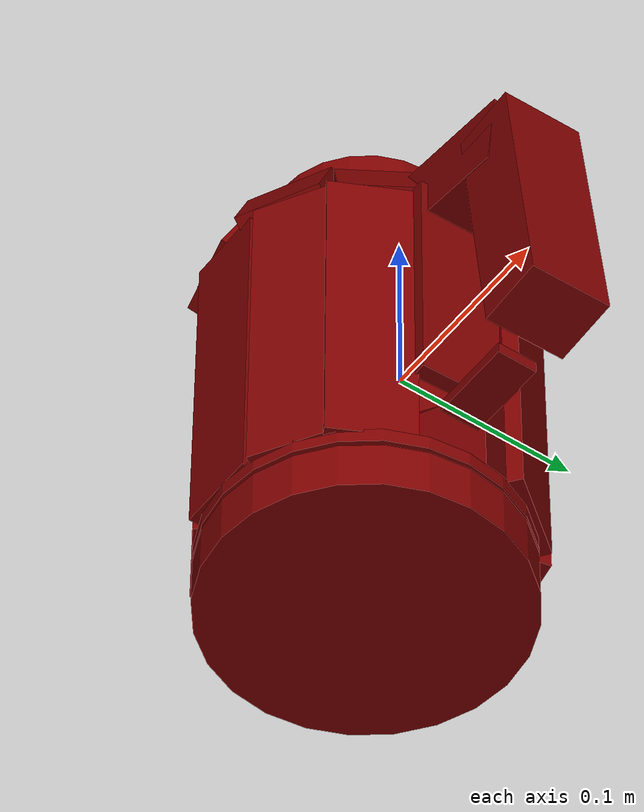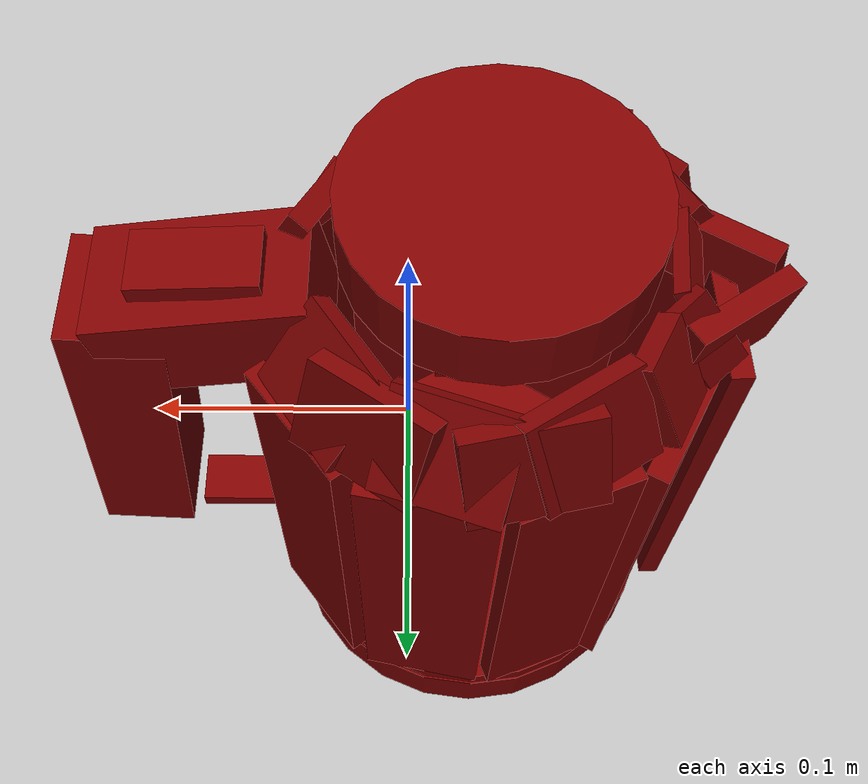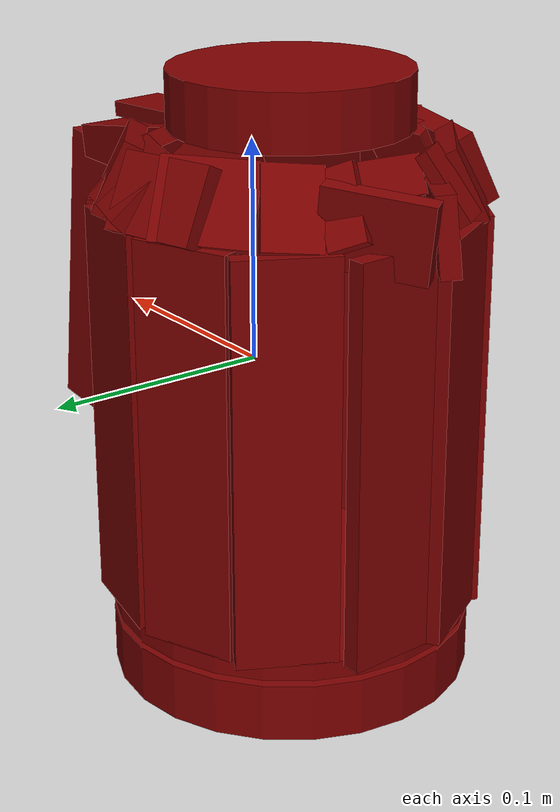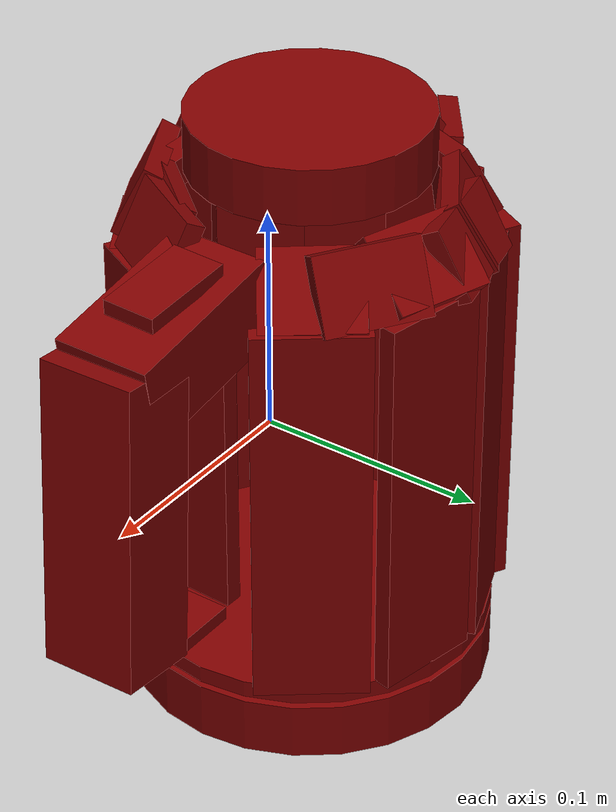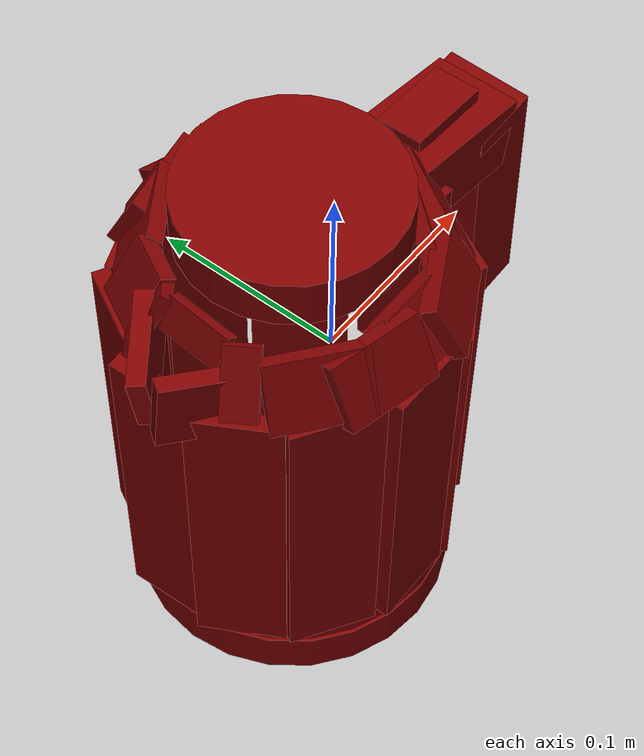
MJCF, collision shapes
<?xml version='1.0' encoding='UTF-8'?>
<mujoco model="model">
  <compiler angle="radian"/>
  <asset>
    <mesh file="visuals/Body001.obj" name="Body001_vis"/>
    <mesh file="visuals/Button001.obj" name="Button001_vis"/>
    <mesh file="visuals/Handle001.obj" name="Handle001_vis"/>
    <mesh file="visuals/Lever001.obj" name="Lever001_vis"/>
    <mesh file="visuals/Lid001.obj" name="Lid001_vis"/>
    <texture file="visuals/T_BC001.png" name="Body001_material" type="2d"/>
    <material name="Body001_material" rgba="1 1 1 1.0" texture="Body001_material" shininess="0.5" specular="0.3103448502657381"/>
    <texture file="visuals/T_BC001.png" name="Handle001_material" type="2d"/>
    <material name="Handle001_material" rgba="1 1 1 1.0" texture="Handle001_material" shininess="3" specular="1"/>
    <texture file="visuals/T_BC001.png" name="Button001_material" type="2d"/>
    <material name="Button001_material" rgba="1 1 1 1.0" texture="Button001_material" shininess="0.5" specular="0.3103448502657381"/>
    <texture file="visuals/T_BC001.png" name="Lever001_material" type="2d"/>
    <material name="Lever001_material" rgba="1 1 1 1.0" texture="Lever001_material" shininess="0.5" specular="0.3103448502657381"/>
    <texture file="visuals/T_BC001.png" name="Lid001_material" type="2d"/>
    <material name="Lid001_material" rgba="1 1 1 1.0" texture="Lid001_material" shininess="5" specular="1"/>
  </asset>
  <default>
    <default class="visual">
      <geom conaffinity="0" contype="0" group="1" type="mesh"/>
    </default>
    <default class="collision">
      <geom group="0" rgba="0.5 0 0 0.5"/>
    </default>
    <default class="spawn">
      <geom group="0" rgba="1 1 1 0.5" contype="0" conaffinity="0"/>
      <site group="0" rgba="1 1 1 0.5"/>
    </default>
    <default class="region">
      <geom group="1" conaffinity="0" contype="0" rgba="0 1 0 0"/>
    </default>
  </default>
  <worldbody>
    <body>
      <body name="object">
        <geom mesh="Body001_vis" type="mesh" solimp="0.998 0.998 0.001" solref="0.001 1" density="100" friction="0.95 0.3 0.1" class="visual" material="Body001_material"/>
        <geom class="collision" type="cylinder" pos="-0.02830752171576023 0.0005646127974614501 -0.12007976323366165" size="0.08009783178567886 0.012889089994132519" quat="7.549790126404332e-08 0.0 0.0 -1.0"/>
        <body name="Handle001">
          <joint axis="0.0 0.0 1.0" pos="0.0 0.0 -0.0005623215110972524" limited="true" name="Handle001_joint" range="0.0 0.05" type="slide" damping="1" frictionloss="1" armature=".01" stiffness="0.05"/>
          <geom mesh="Handle001_vis" type="mesh" solimp="0.998 0.998 0.001" solref="0.001 1" density="100" friction="0.95 0.3 0.1" class="visual" material="Handle001_material"/>
          <geom class="collision" type="box" pos="-0.03440451994538307 -0.0752987191081047 -0.009017566218972206" size="0.02169741876423359 0.004031775519251823 0.08795532584190369" quat="7.549790126404332e-08 0.0 0.0 -1.0"/>
          <geom class="collision" type="box" pos="-0.0758616179227829 -0.05982092767953873 -0.009017566218972206" size="0.02169741690158844 0.004031796008348465 0.08795532584190369" quat="0.27820244431495667 0.0 0.0 0.960522472858429"/>
          <geom class="collision" type="box" pos="-0.10850884765386581 0.00907945167273283 -0.009017566218972206" size="0.02169741876423359 0.004031796474009752 0.08795532584190369" quat="0.6909513473510742 0.0 0.0 0.7229012846946716"/>
          <geom class="collision" type="box" pos="-0.05348363146185875 0.07102929055690765 -0.009017568081617355" size="0.02169741876423359 0.004031796474009752 0.08795532584190369" quat="0.9823753237724304 0.0 0.0 0.1869191825389862"/>
          <geom class="collision" type="box" pos="-0.00674959272146225 0.0735863596200943 -0.009017566218972206" size="0.023957490921020508 0.004048802424222231 0.08795532584190369" quat="0.995302677154541 0.0 0.0 -0.09681202471256256"/>
          <geom class="collision" type="box" pos="0.03563136234879494 0.046449318528175354 -0.009017566218972206" size="0.024502277374267578 0.004031796474009752 0.08795532584190369" quat="0.8964644074440002 0.0 0.0 -0.4431157410144806"/>
          <geom class="collision" type="box" pos="0.008283800445497036 -0.06614738702774048 -0.010090500116348267" size="0.02169741876423359 0.004031796474009752 0.08795532584190369" quat="0.2657346725463867 0.0 0.0 -0.9640461802482605"/>
          <geom class="collision" type="box" pos="0.049651987850666046 -0.003842214122414589 0.012190221808850765" size="0.02169741876423359 0.004031796474009752 0.06674753874540329" quat="0.6941568851470947 0.0 0.0 -0.7198237776756287"/>
          <geom class="collision" type="box" pos="-0.026893630623817444 -0.06483730673789978 0.0901673436164856" size="0.02169741876423359 0.004031796008348465 0.017500348389148712" quat="7.261022005877749e-08 2.0680648304960414e-08 -0.2739235460758209 -0.9617514610290527"/>
          <geom class="collision" type="box" pos="0.015887398272752762 -0.0442684106528759 0.09039218723773956" size="0.02169741876423359 0.004031796008348465 0.017500348389148712" quat="0.40188682079315186 0.11446435004472733 -0.2488613873720169 -0.8737578988075256"/>
          <geom class="collision" type="box" pos="-0.012582619674503803 0.06592190265655518 0.0934317335486412" size="0.02169741876423359 0.004031795542687178 0.01750035025179386" quat="0.9043024182319641 0.3939497172832489 -0.06188849359750748 -0.15235024690628052"/>
          <geom class="collision" type="box" pos="0.025363067165017128 0.03980857506394386 0.09003274142742157" size="0.02169741876423359 0.004031796008348465 0.017500348389148712" quat="0.8161525726318359 0.32853493094444275 -0.15068449079990387 -0.45083698630332947"/>
          <geom class="collision" type="box" pos="-0.07620084285736084 -0.05108019709587097 0.09243227541446686" size="0.022838424891233444 0.004243816249072552 0.016412906348705292" quat="0.3305305242538452 0.06446421146392822 0.21881256997585297 0.9158138632774353"/>
          <geom class="collision" type="box" pos="0.1037253588438034 0.0010983104584738612 0.015541129745543003" size="0.021699553355574608 0.018044065684080124 0.06782470643520355" quat="0.7038640379905701 0.03833984583616257 -0.019157811999320984 -0.7090405225753784"/>
          <geom class="collision" type="box" pos="0.06630933284759521 -0.00025205922429449856 0.07596178352832794" size="0.021699553355574608 0.019013550132513046 0.038298796862363815" quat="0.5390055775642395 0.45427554845809937 -0.4571070373058319 -0.5423650741577148"/>
          <geom class="collision" type="box" pos="-0.05540698394179344 0.060213569551706314 0.09372632205486298" size="0.02169741876423359 0.004031796008348465 0.017500348389148712" quat="0.9309446811676025 0.23488211631774902 0.07750339061021805 0.26863667368888855"/>
          <geom class="collision" type="box" pos="-0.10256164520978928 -0.028106708079576492 -0.009017566218972206" size="0.02169741876423359 0.004031796474009752 0.08795532584190369" quat="0.503608226776123 0.0 0.0 0.8639321327209473"/>
          <geom class="collision" type="box" pos="-0.08835724741220474 0.04768247902393341 -0.009017566218972206" size="0.02169741876423359 0.004031796474009752 0.08795532584190369" quat="0.857904851436615 0.0 0.0 0.5138086080551147"/>
          <geom class="collision" type="box" pos="0.03363843634724617 -0.04154588282108307 -0.010090500116348267" size="0.02169741876423359 0.004031796474009752 0.08795532584190369" quat="0.5237988233566284 0.0 0.0 -0.8518419861793518"/>
          <geom class="collision" type="box" pos="-0.08148292452096939 0.04019462689757347 0.09372632205486298" size="0.012414224445819855 0.003891986794769764 0.017361877486109734" quat="0.8187540769577026 0.23250412940979004 0.09030118584632874 0.5171356797218323"/>
          <geom class="collision" type="box" pos="-0.0958651602268219 -0.026472700759768486 0.09578603506088257" size="0.008230204693973064 0.002693294547498226 0.016519809141755104" quat="0.14230182766914368 -0.45794159173965454 -0.8355329632759094 0.26818719506263733"/>
          <geom class="collision" type="box" pos="-0.09355340898036957 0.024963852018117905 0.09468774497509003" size="0.008230204693973064 0.0026932943146675825 0.016519811004400253" quat="0.189413383603096 -0.910895586013794 -0.26446810364723206 0.2538670003414154"/>
          <geom class="collision" type="box" pos="-0.08986535668373108 0.0012463164748623967 0.10104364901781082" size="0.008230205625295639 0.0026932943146675825 0.016519809141755104" quat="0.34048619866371155 0.3929964005947113 0.5911062955856323 -0.6166168451309204"/>
          <geom class="collision" type="cylinder" pos="-0.02830752171576023 0.0005646127974614501 -0.10038736462593079" size="0.08009783178567886 0.0038796693552285433" quat="7.549790126404332e-08 0.0 0.0 -1.0"/>
          <geom class="collision" type="box" pos="-0.05395515635609627 -0.06544315814971924 0.09288392961025238" size="0.022838424891233444 0.004243816249072552 0.016412906348705292" quat="0.11664082109928131 0.013730009086430073 0.22769729793071747 0.9666231870651245"/>
          <geom class="collision" type="box" pos="-0.0036407804582268 -0.06448478251695633 0.09288392961025238" size="0.022838419303297997 0.004243816249072552 0.016412906348705292" quat="0.23359708487987518 0.06787916272878647 -0.2177773118019104 -0.9451972842216492"/>
          <geom class="collision" type="box" pos="0.0299021378159523 -0.03174050897359848 0.09288392961025238" size="0.022838423028588295 0.004243816249072552 0.016412906348705292" quat="0.47627586126327515 0.1232883408665657 -0.19192320108413696 -0.8491918444633484"/>
          <geom class="collision" type="box" pos="0.012731358408927917 0.05810658633708954 0.09288392961025238" size="0.022838421165943146 0.004243816249072552 0.016412906348705292" quat="0.9285897612571716 0.22127045691013336 -0.055442988872528076 -0.2927226722240448"/>
          <geom class="collision" type="box" pos="-0.03818200156092644 0.06988653540611267 0.09288392961025238" size="0.022838421165943146 0.004243816249072552 0.016412906348705292" quat="0.9689041972160339 0.2252521961927414 0.036000244319438934 0.09586469829082489"/>
          <geom class="collision" type="box" pos="-0.10466885566711426 -0.01621042750775814 0.08253401517868042" size="0.022838424891233444 0.004243816249072552 0.01641290821135044" quat="0.02621924690902233 0.9493038058280945 -0.3063584268093109 -0.06541700661182404"/>
          <geom class="collision" type="box" pos="-0.10466885566711426 0.016976576298475266 0.08608630299568176" size="0.022838424891233444 0.004243816249072552 0.016412906348705292" quat="0.9493038058280945 -0.026219135150313377 -0.06541696190834045 0.3063584268093109"/>
          <body name="Button001">
            <joint axis="0.0 0.0 -1.0" pos="0.06965344399213791 -2.963922725029988e-07 0.0965026244521141" limited="true" name="Button001_joint" range="0.0 0.002" type="slide" damping="1" frictionloss="1" armature=".01" stiffness="0.5" springref="-0.5"/>
            <geom mesh="Button001_vis" type="mesh" solimp="0.998 0.998 0.001" solref="0.001 1" density="100" friction="0.95 0.3 0.1" class="visual" material="Button001_material"/>
            <geom class="collision" type="box" pos="0.0687132254242897 0.0007476005121134222 0.09938772022724152" size="0.011773720383644104 0.003435871796682477 0.022108402103185654" quat="0.520918071269989 0.47537165880203247 -0.4915735721588135 -0.5109027028083801"/>
          </body>
          <body name="Lever001">
            <joint axis="0.0 0.0 -1.0" pos="0.06434290111064911 -0.000685233564581722 -0.06734438985586166" limited="true" name="Lever001_joint" range="0.0 0.01" type="slide" damping="1" frictionloss="1" armature=".01" stiffness="0.5" springref="-0.5"/>
            <geom mesh="Lever001_vis" type="mesh" solimp="0.998 0.998 0.001" solref="0.001 1" density="100" friction="0.95 0.3 0.1" class="visual" material="Lever001_material"/>
            <geom class="collision" type="box" pos="0.06796029210090637 -0.00038287436473183334 -0.06697414815425873" size="0.02208857052028179 0.010510086081922054 0.0030917772091925144" quat="1.0 0.0 0.0 0.0"/>
          </body>
          <body name="Lid001">
            <joint axis="0.0 1.0 0.0" pos="0.02363351359963417 -1.555710440470648e-07 0.10970461368560791" limited="true" name="Lid001_joint" range="0.0 1.5707963267948966" type="hinge" damping="1" frictionloss="1" armature=".01" stiffness="0.05"/>
            <geom mesh="Lid001_vis" type="mesh" solimp="0.998 0.998 0.001" solref="0.001 1" density="100" friction="0.95 0.3 0.1" class="visual" material="Lid001_material"/>
            <geom class="collision" type="cylinder" pos="-0.02830752171576023 0.0005646127974614501 0.12319688498973846" size="0.051645420491695404 0.012263890355825424" quat="7.549790126404332e-08 0.0 0.0 -1.0"/>
          </body>
        </body>
        <geom class="region" name="reg_main" type="box" pos="1.862645149230957e-09 0.0 0.0" size="0.12101586908102036 0.0778646394610405 0.13227437436580658"/>
      </body>
    </body>
  </worldbody>
  <actuator>
    <motor name="Handle001_joint_actuator" joint="Handle001_joint" gear="30"/>
    <motor name="Button001_joint_actuator" joint="Button001_joint" gear="0.5"/>
    <motor name="Lever001_joint_actuator" joint="Lever001_joint" gear="1"/>
    <motor name="Lid001_joint_actuator" joint="Lid001_joint" gear="5"/>
  </actuator>
</mujoco>
